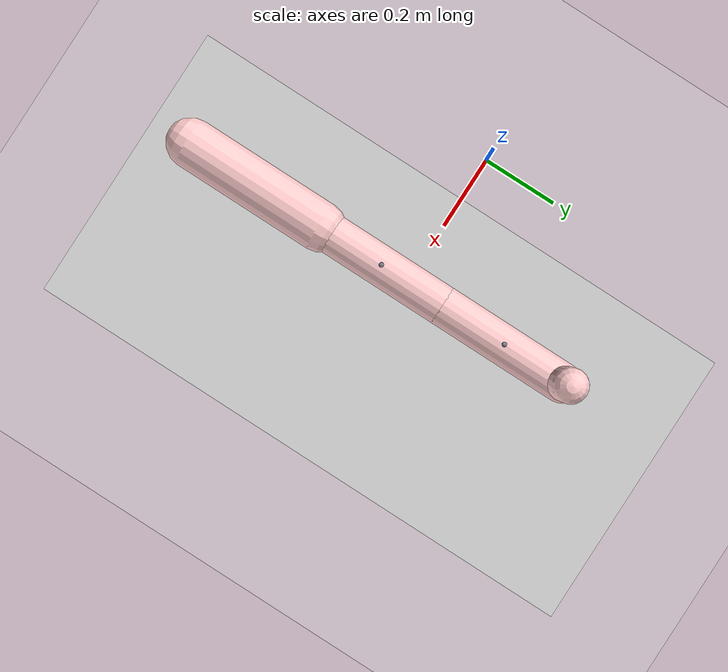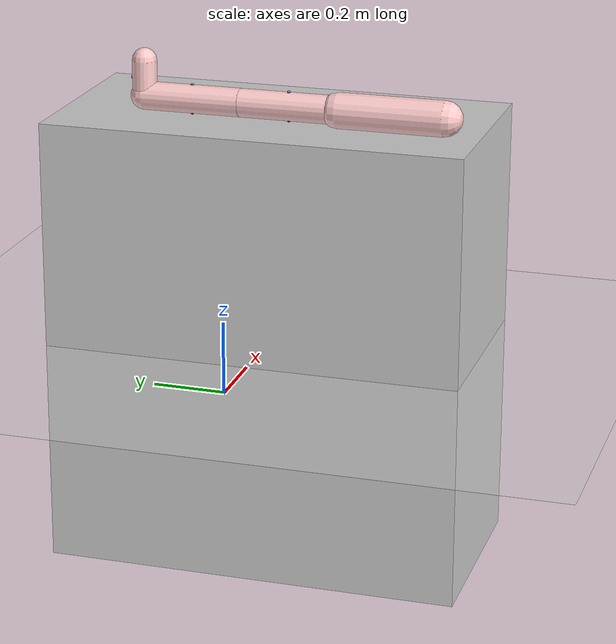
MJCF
<?xml version="1.0"?>
<mujoco model="g1 scene">
    <compiler angle="radian"/>

    <statistic center="0.3 0 0.4" extent="1.5"/>

    <visual>
        <headlight diffuse="0 0 0" ambient="1 1 1"/>
        <rgba fog="1.0 1.0 1.0 1.0"/>
        <global azimuth="120" elevation="-20"/>
    </visual>

    <asset>
        <material name="groundplane" rgba="0.9 0.9 0.9 1"/>
    </asset>

    <worldbody>
        <light pos="0 0 3" diffuse="1 1 1" castshadow="false" directional="true" intensity="2"/>
        <light pos="2 -3 3" dir="-2 3 -3" diffuse="1 1 1" directional="false" intensity="30"/>
        <geom name="floor" size="5 5 0.1" type="plane" material="groundplane"/>

        <body name="bed" pos=".5 .0 .0">
            <geom type="box" size=".3 .6 .65" rgba=".8 .8 .8 1" mass="0.1" friction="1 0.005 0.0001"/>
        </body>

        <body name="leg" pos=".4 -.3 .7">
            <geom type="capsule" size=".05" fromto="0 -.2 0  0 .1 0" rgba="1.0 .8 .8 1" mass="0.1"/>
            <body pos="0 .1 0">
                <joint name="hip" axis="1 0 0" frictionloss="1000" range="0 2"/>
                <geom type="capsule" size=".04" fromto="0 0 0  0 .28 0" rgba="1.0 .8 .8 1" mass="0.1"/>
                <site name="thigh_top" pos="0 0.14 0.04" quat="0 1 0 0"/>
                <geom type="cylinder" size=".005" fromto="0 0.14 0.041 0 0.14 0.039 " rgba=".0 .0 .8 1" mass="0"/>
                <site name="thigh_bottom" pos="0 0.14 -0.04" quat="1 0 0 0"/>
                <geom type="cylinder" size=".005" fromto="0 0.14 -0.041 0 0.14 -0.039 " rgba=".0 .0 .8 1" mass="0"/>
                <body pos="0 .28 0">
                    <joint name="knee" axis="1 0 0" frictionloss="1000" range="-2.5 0"/>
                    <geom type="capsule" size=".04" fromto="0 0 0  0 .28 0" rgba="1.0 .8 .8 1" mass="0.1"/>
                    <site name="calf_top" pos="0 0.14 0.04" quat="0 1 0 0"/>
                    <geom type="cylinder" size=".005" fromto="0 0.14 0.041 0 0.14 0.039 " rgba=".0 .0 .8 1" mass="0"/>
                    <site name="calf_bottom" pos="0 0.14 -0.04" quat="1 0 0 0"/>
                    <geom type="cylinder" size=".005" fromto="0 0.14 -0.041 0 0.14 -0.039 " rgba=".0 .0 .8 1" mass="0"/>
                    <body pos="0 .28 0">
                        <geom type="capsule" size=".035" fromto="0 0 0  0 0 0.1" rgba="1.0 .8 .8 1" mass="0.1"/>
                        <site name="foot_bottom" pos="0 0.035 0.05" quat="0.707 0.707 0 0"/>
                        <geom type="cylinder" size=".005" fromto="0 0.034 0.05 0 0.036 0.05 " rgba=".0 .0 .8 1" mass="0"/>
                    </body>
                </body>
            </body>
        </body>
    </worldbody>
</mujoco>
